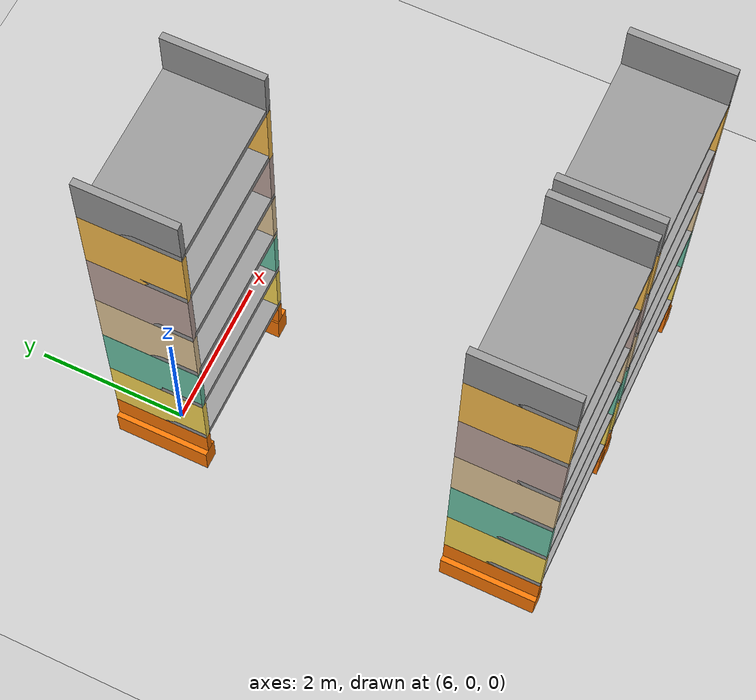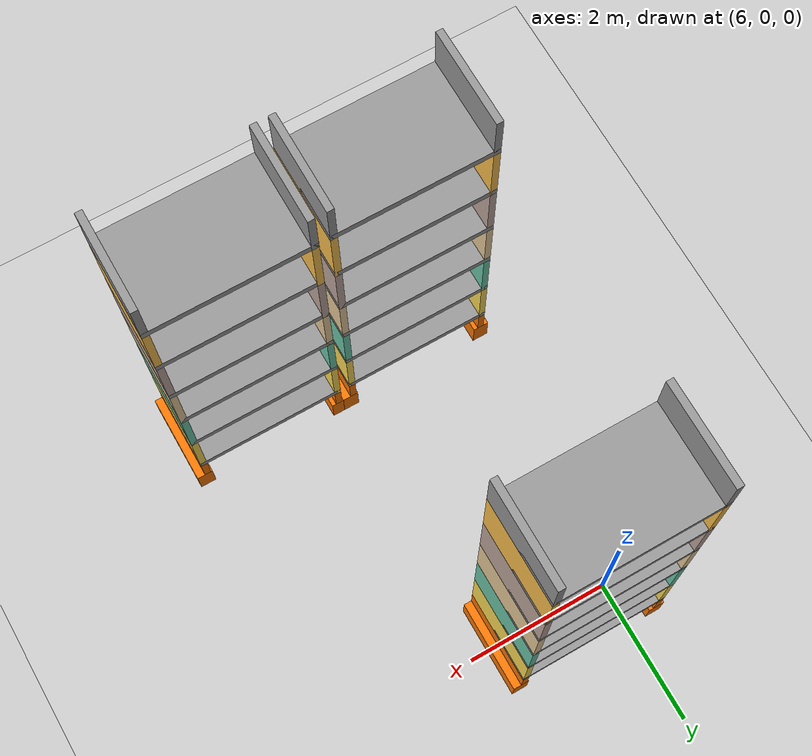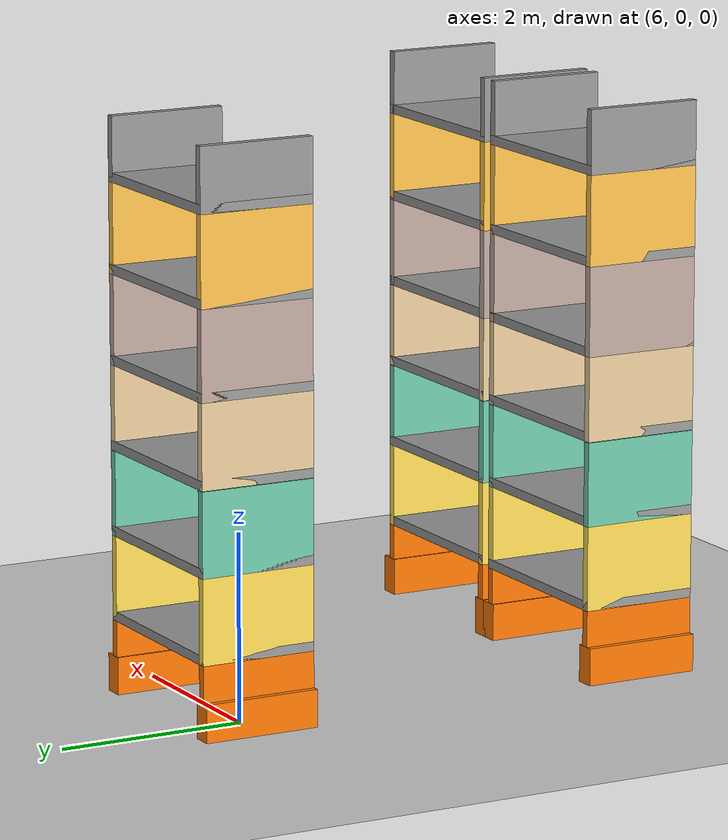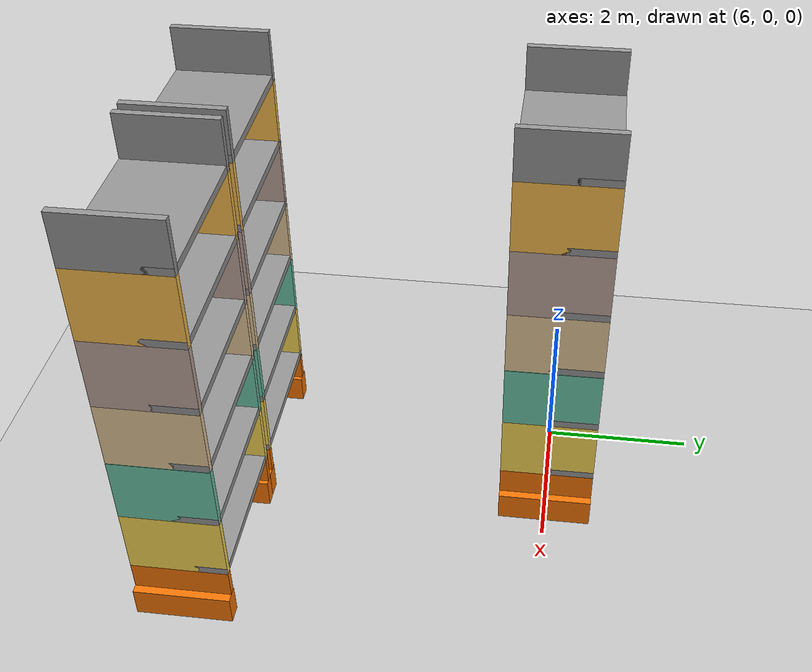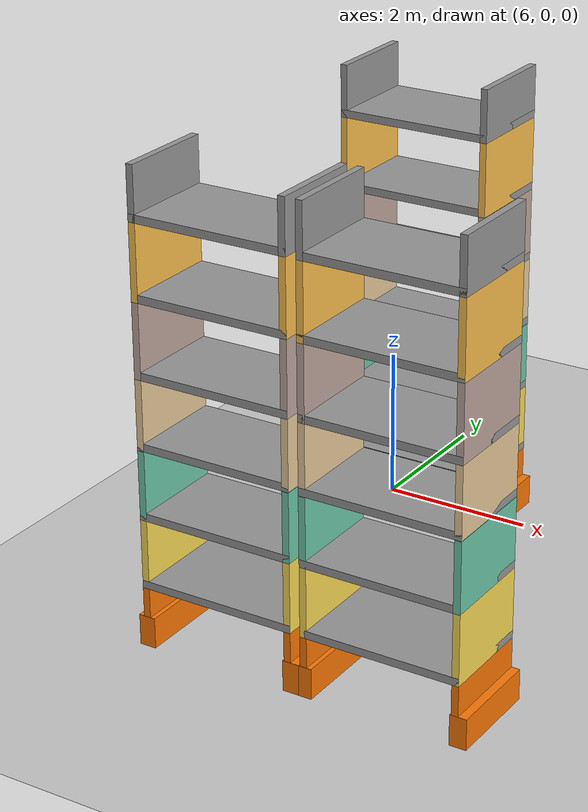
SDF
<sdf version="1.6">
 <world name="pseudo_world1">
  <model name="ground_plane">
   <static>1</static>
   <link name="link">
    <collision name="collision">
     <geometry><plane><normal>0 0 1</normal><size>100 100</size></plane></geometry>
     <surface><friction><ode><mu>100</mu><mu2>50</mu2></ode></friction></surface>
    </collision>
    <visual name="visual">
     <cast_shadows>0</cast_shadows>
     <geometry><plane><normal>0 0 1</normal><size>100 100</size></plane></geometry>
     <material>
      <script><uri>file://media/materials/scripts/gazebo.material</uri><name>Gazebo/Grey</name></script>
     </material>
    </visual>
   </link>
  </model>
  <model name="rack_whole_2">
   <static>1</static>
   <pose>6.63 0 0 0 -0 0</pose>
   <link name="Base_L">
    <collision name="Base_L_Collision">
     <geometry><box><size>1.258 0.22 0.4</size></box></geometry>
     <pose>0 0 0.2 0 -0 0</pose>
    </collision>
    <visual name="Base_L_Visual">
     <pose>0 0 0.2 0 -0 0</pose>
     <geometry><box><size>1.258 0.22 0.4</size></box></geometry>
     <material>
      <script><uri>file://media/materials/scripts/gazebo.material</uri><name>Gazebo/Grey</name></script>
      <ambient>0.996078 0.47451 0.0196078 1</ambient>
     </material>
     <meta><layer>0</layer></meta>
    </visual>
    <pose>-1.02 0 0 0 -0 1.5708</pose>
   </link>
   <link name="Base_R">
    <collision name="Base_R_Collision">
     <geometry><box><size>1.258 0.22 0.4</size></box></geometry>
     <pose>0 0 0.2 0 -0 0</pose>
    </collision>
    <visual name="Base_R_Visual">
     <pose>0 0 0.2 0 -0 0</pose>
     <geometry><box><size>1.258 0.22 0.4</size></box></geometry>
     <material>
      <script><uri>file://media/materials/scripts/gazebo.material</uri><name>Gazebo/Grey</name></script>
      <ambient>0.996078 0.47451 0.0196078 1</ambient>
     </material>
     <meta><layer>0</layer></meta>
    </visual>
    <pose>1.02 0 0 0 -0 1.5708</pose>
   </link>
   <link name="Wall_1_L">
    <collision name="Wall_1_L_Collision">
     <geometry><box><size>1.258 0.09 0.387</size></box></geometry>
     <pose>0 0 0.1935 0 -0 0</pose>
    </collision>
    <visual name="Wall_1_L_Visual">
     <pose>0 0 0.1935 0 -0 0</pose>
     <geometry><box><size>1.258 0.09 0.387</size></box></geometry>
     <material>
      <script><uri>file://media/materials/scripts/gazebo.material</uri><name>Gazebo/Grey</name></script>
      <ambient>0.996078 0.47451 0.0196078 1</ambient>
     </material>
     <meta><layer>1</layer></meta>
    </visual>
    <pose>-1.015 0 0.4 0 -0 1.5708</pose>
   </link>
   <link name="Wall_1_R">
    <collision name="Wall_1_R_Collision">
     <geometry><box><size>1.258 0.09 0.387</size></box></geometry>
     <pose>0 0 0.1935 0 -0 0</pose>
    </collision>
    <visual name="Wall_1_R_Visual">
     <pose>0 0 0.1935 0 -0 0</pose>
     <geometry><box><size>1.258 0.09 0.387</size></box></geometry>
     <material>
      <script><uri>file://media/materials/scripts/gazebo.material</uri><name>Gazebo/Grey</name></script>
      <ambient>0.996078 0.47451 0.0196078 1</ambient>
     </material>
     <meta><layer>1</layer></meta>
    </visual>
    <pose>0.975 0 0.4 0 -0 1.5708</pose>
   </link>
   <link name="Floor_1">
    <collision name="Floor_1_Collision">
     <geometry><box><size>2.08 1.258 0.1</size></box></geometry>
     <pose>0 0 0.05 0 -0 0</pose>
    </collision>
    <visual name="Floor_1_Visual">
     <pose>0 0 0.05 0 -0 0</pose>
     <geometry><box><size>2.08 1.258 0.1</size></box></geometry>
     <material>
      <script><uri>file://media/materials/scripts/gazebo.material</uri><name>Gazebo/Grey</name></script>
      <ambient>1 1 1 1</ambient>
     </material>
     <meta><layer>2</layer></meta>
    </visual>
    <pose>-0.02 0 0.787 0 -0 0</pose>
   </link>
   <link name="Wall_2_L">
    <collision name="Wall_2_L_Collision">
     <geometry><box><size>1.258 0.09 0.905</size></box></geometry>
     <pose>0 0 0.4525 0 -0 0</pose>
    </collision>
    <visual name="Wall_2_L_Visual">
     <pose>0 0 0.4525 0 -0 0</pose>
     <geometry><box><size>1.258 0.09 0.905</size></box></geometry>
     <material>
      <script><uri>file://media/materials/scripts/gazebo.material</uri><name>Gazebo/Grey</name></script>
      <ambient>1 0.87 0.34 1</ambient>
     </material>
     <meta><layer>2</layer></meta>
    </visual>
    <pose>-1.015 0 0.787 0 -0 1.5708</pose>
   </link>
   <link name="Wall_2_R">
    <collision name="Wall_2_R_Collision">
     <geometry><box><size>1.258 0.09 0.905</size></box></geometry>
     <pose>0 0 0.4525 0 -0 0</pose>
    </collision>
    <visual name="Wall_2_R_Visual">
     <pose>0 0 0.4525 0 -0 0</pose>
     <geometry><box><size>1.258 0.09 0.905</size></box></geometry>
     <material>
      <script><uri>file://media/materials/scripts/gazebo.material</uri><name>Gazebo/Grey</name></script>
      <ambient>1 0.87 0.34 1</ambient>
     </material>
     <meta><layer>2</layer></meta>
    </visual>
    <pose>0.975 0 0.787 0 -0 1.5708</pose>
   </link>
   <link name="Floor_2">
    <collision name="Floor_2_Collision">
     <geometry><box><size>2.08 1.258 0.1</size></box></geometry>
     <pose>0 0 0.05 0 -0 0</pose>
    </collision>
    <visual name="Floor_2_Visual">
     <pose>0 0 0.05 0 -0 0</pose>
     <geometry><box><size>2.08 1.258 0.1</size></box></geometry>
     <material>
      <script><uri>file://media/materials/scripts/gazebo.material</uri><name>Gazebo/Grey</name></script>
      <ambient>1 1 1 1</ambient>
     </material>
     <meta><layer>3</layer></meta>
    </visual>
    <pose>-0.02 0 1.692 0 -0 0</pose>
   </link>
   <link name="Wall_3_L">
    <collision name="Wall_3_L_Collision">
     <geometry><box><size>1.258 0.09 0.899</size></box></geometry>
     <pose>0 0 0.4495 0 -0 0</pose>
    </collision>
    <visual name="Wall_3_L_Visual">
     <pose>0 0 0.4495 0 -0 0</pose>
     <geometry><box><size>1.258 0.09 0.899</size></box></geometry>
     <material>
      <script><uri>file://media/materials/scripts/gazebo.material</uri><name>Gazebo/Grey</name></script>
      <ambient>0.435294 0.796078 0.67451 1</ambient>
     </material>
     <meta><layer>3</layer></meta>
    </visual>
    <pose>-1.015 0 1.692 0 -0 1.5708</pose>
   </link>
   <link name="Wall_3_R">
    <collision name="Wall_3_R_Collision">
     <geometry><box><size>1.258 0.09 0.899</size></box></geometry>
     <pose>0 0 0.4495 0 -0 0</pose>
    </collision>
    <visual name="Wall_3_R_Visual">
     <pose>0 0 0.4495 0 -0 0</pose>
     <geometry><box><size>1.258 0.09 0.899</size></box></geometry>
     <material>
      <script><uri>file://media/materials/scripts/gazebo.material</uri><name>Gazebo/Grey</name></script>
      <ambient>0.435294 0.796078 0.67451 1</ambient>
     </material>
     <meta><layer>3</layer></meta>
    </visual>
    <pose>0.975 0 1.692 0 -0 1.5708</pose>
   </link>
   <link name="Floor_3">
    <collision name="Floor_3_Collision">
     <geometry><box><size>2.08 1.258 0.1</size></box></geometry>
     <pose>0 0 0.05 0 -0 0</pose>
    </collision>
    <visual name="Floor_3_Visual">
     <pose>0 0 0.05 0 -0 0</pose>
     <geometry><box><size>2.08 1.258 0.1</size></box></geometry>
     <material>
      <script><uri>file://media/materials/scripts/gazebo.material</uri><name>Gazebo/Grey</name></script>
      <ambient>1 1 1 1</ambient>
     </material>
     <meta><layer>4</layer></meta>
    </visual>
    <pose>-0.02 0 2.597 0 -0 0</pose>
   </link>
   <link name="Wall_4_L">
    <collision name="Wall_4_L_Collision">
     <geometry><box><size>1.258 0.09 0.9</size></box></geometry>
     <pose>0 0 0.45 0 -0 0</pose>
    </collision>
    <visual name="Wall_4_L_Visual">
     <pose>0 0 0.45 0 -0 0</pose>
     <geometry><box><size>1.258 0.09 0.9</size></box></geometry>
     <material>
      <script><uri>file://media/materials/scripts/gazebo.material</uri><name>Gazebo/Grey</name></script>
      <ambient>0.921569 0.807843 0.615686 1</ambient>
     </material>
     <meta><layer>4</layer></meta>
    </visual>
    <pose>-1.015 0 2.597 0 -0 1.5708</pose>
   </link>
   <link name="Wall_4_R">
    <collision name="Wall_4_R_Collision">
     <geometry><box><size>1.258 0.09 0.9</size></box></geometry>
     <pose>0 0 0.45 0 -0 0</pose>
    </collision>
    <visual name="Wall_4_R_Visual">
     <pose>0 0 0.45 0 -0 0</pose>
     <geometry><box><size>1.258 0.09 0.9</size></box></geometry>
     <material>
      <script><uri>file://media/materials/scripts/gazebo.material</uri><name>Gazebo/Grey</name></script>
      <ambient>0.921569 0.807843 0.615686 1</ambient>
     </material>
     <meta><layer>4</layer></meta>
    </visual>
    <pose>0.975 0 2.597 0 -0 1.5708</pose>
   </link>
   <link name="Floor_4">
    <collision name="Floor_4_Collision">
     <geometry><box><size>2.08 1.258 0.1</size></box></geometry>
     <pose>0 0 0.05 0 -0 0</pose>
    </collision>
    <visual name="Floor_4_Visual">
     <pose>0 0 0.05 0 -0 0</pose>
     <geometry><box><size>2.08 1.258 0.1</size></box></geometry>
     <material>
      <script><uri>file://media/materials/scripts/gazebo.material</uri><name>Gazebo/Grey</name></script>
      <ambient>1 1 1 1</ambient>
     </material>
     <meta><layer>5</layer></meta>
    </visual>
    <pose>-0.02 0 3.497 0 -0 0</pose>
   </link>
   <link name="Wall_5_L">
    <collision name="Wall_5_L_Collision">
     <geometry><box><size>1.258 0.09 0.952</size></box></geometry>
     <pose>0 0 0.476 0 -0 0</pose>
    </collision>
    <visual name="Wall_5_L_Visual">
     <pose>0 0 0.476 0 -0 0</pose>
     <geometry><box><size>1.258 0.09 0.952</size></box></geometry>
     <material>
      <script><uri>file://media/materials/scripts/gazebo.material</uri><name>Gazebo/Grey</name></script>
      <ambient>0.760784 0.662745 0.627451 1</ambient>
     </material>
     <meta><layer>5</layer></meta>
    </visual>
    <pose>-1.015 0 3.497 0 -0 1.5708</pose>
   </link>
   <link name="Wall_5_R">
    <collision name="Wall_5_R_Collision">
     <geometry><box><size>1.258 0.09 0.952</size></box></geometry>
     <pose>0 0 0.476 0 -0 0</pose>
    </collision>
    <visual name="Wall_5_R_Visual">
     <pose>0 0 0.476 0 -0 0</pose>
     <geometry><box><size>1.258 0.09 0.952</size></box></geometry>
     <material>
      <script><uri>file://media/materials/scripts/gazebo.material</uri><name>Gazebo/Grey</name></script>
      <ambient>0.760784 0.662745 0.627451 1</ambient>
     </material>
     <meta><layer>5</layer></meta>
    </visual>
    <pose>0.975 0 3.497 0 -0 1.5708</pose>
   </link>
   <link name="Floor_5">
    <collision name="Floor_5_Collision">
     <geometry><box><size>2.08 1.258 0.1</size></box></geometry>
     <pose>0 0 0.05 0 -0 0</pose>
    </collision>
    <visual name="Floor_5_Visual">
     <pose>0 0 0.05 0 -0 0</pose>
     <geometry><box><size>2.08 1.258 0.1</size></box></geometry>
     <material>
      <script><uri>file://media/materials/scripts/gazebo.material</uri><name>Gazebo/Grey</name></script>
      <ambient>1 1 1 1</ambient>
     </material>
     <meta><layer>6</layer></meta>
    </visual>
    <pose>-0.02 0 4.449 0 -0 0</pose>
   </link>
   <link name="Wall_6_L">
    <collision name="Wall_6_L_Collision">
     <geometry><box><size>1.258 0.09 0.957</size></box></geometry>
     <pose>0 0 0.4785 0 -0 0</pose>
    </collision>
    <visual name="Wall_6_L_Visual">
     <pose>0 0 0.4785 0 -0 0</pose>
     <geometry><box><size>1.258 0.09 0.957</size></box></geometry>
     <material>
      <script><uri>file://media/materials/scripts/gazebo.material</uri><name>Gazebo/Grey</name></script>
      <ambient>1 0.764706 0.305882 1</ambient>
     </material>
     <meta><layer>6</layer></meta>
    </visual>
    <pose>-1.015 0 4.449 0 -0 1.5708</pose>
   </link>
   <link name="Wall_6_R">
    <collision name="Wall_6_R_Collision">
     <geometry><box><size>1.258 0.09 0.957</size></box></geometry>
     <pose>0 0 0.4785 0 -0 0</pose>
    </collision>
    <visual name="Wall_6_R_Visual">
     <pose>0 0 0.4785 0 -0 0</pose>
     <geometry><box><size>1.258 0.09 0.957</size></box></geometry>
     <material>
      <script><uri>file://media/materials/scripts/gazebo.material</uri><name>Gazebo/Grey</name></script>
      <ambient>1 0.764706 0.305882 1</ambient>
     </material>
     <meta><layer>6</layer></meta>
    </visual>
    <pose>0.975 0 4.449 0 -0 1.5708</pose>
   </link>
   <link name="Floor_6">
    <collision name="Floor_6_Collision">
     <geometry><box><size>2.08 1.258 0.1</size></box></geometry>
     <pose>0 0 0.05 0 -0 0</pose>
    </collision>
    <visual name="Floor_6_Visual">
     <pose>0 0 0.05 0 -0 0</pose>
     <geometry><box><size>2.08 1.258 0.1</size></box></geometry>
     <material>
      <script><uri>file://media/materials/scripts/gazebo.material</uri><name>Gazebo/Grey</name></script>
      <ambient>1 1 1 1</ambient>
     </material>
     <meta><layer>7</layer></meta>
    </visual>
    <pose>-0.02 0 5.406 0 -0 0</pose>
   </link>
   <link name="Wall_7_L">
    <collision name="Wall_7_L_Collision">
     <geometry><box><size>1.258 0.09 0.685</size></box></geometry>
     <pose>0 0 0.3425 0 -0 0</pose>
    </collision>
    <visual name="Wall_7_L_Visual">
     <pose>0 0 0.3425 0 -0 0</pose>
     <geometry><box><size>1.258 0.09 0.685</size></box></geometry>
     <material>
      <script><uri>file://media/materials/scripts/gazebo.material</uri><name>Gazebo/Grey</name></script>
      <ambient>1 1 1 1</ambient>
     </material>
     <meta><layer>7</layer></meta>
    </visual>
    <pose>-1.015 0 5.406 0 -0 1.5708</pose>
   </link>
   <link name="Wall_7_R">
    <collision name="Wall_7_R_Collision">
     <geometry><box><size>1.258 0.09 0.685</size></box></geometry>
     <pose>0 0 0.3425 0 -0 0</pose>
    </collision>
    <visual name="Wall_7_R_Visual">
     <pose>0 0 0.3425 0 -0 0</pose>
     <geometry><box><size>1.258 0.09 0.685</size></box></geometry>
     <material>
      <script><uri>file://media/materials/scripts/gazebo.material</uri><name>Gazebo/Grey</name></script>
      <ambient>1 1 1 1</ambient>
     </material>
     <meta><layer>7</layer></meta>
    </visual>
    <pose>0.975 0 5.406 0 -0 1.5708</pose>
   </link>
  </model>
  <model name="rack_whole_6">
   <static>1</static>
   <pose>6.63 -4.478 0 0 -0 0</pose>
   <link name="Base_L">
    <collision name="Base_L_Collision">
     <geometry><box><size>1.258 0.22 0.4</size></box></geometry>
     <pose>0 0 0.2 0 -0 0</pose>
    </collision>
    <visual name="Base_L_Visual">
     <pose>0 0 0.2 0 -0 0</pose>
     <geometry><box><size>1.258 0.22 0.4</size></box></geometry>
     <material>
      <script><uri>file://media/materials/scripts/gazebo.material</uri><name>Gazebo/Grey</name></script>
      <ambient>0.996078 0.47451 0.0196078 1</ambient>
     </material>
     <meta><layer>0</layer></meta>
    </visual>
    <pose>-1.02 0 0 0 -0 1.5708</pose>
   </link>
   <link name="Base_R">
    <collision name="Base_R_Collision">
     <geometry><box><size>1.258 0.22 0.4</size></box></geometry>
     <pose>0 0 0.2 0 -0 0</pose>
    </collision>
    <visual name="Base_R_Visual">
     <pose>0 0 0.2 0 -0 0</pose>
     <geometry><box><size>1.258 0.22 0.4</size></box></geometry>
     <material>
      <script><uri>file://media/materials/scripts/gazebo.material</uri><name>Gazebo/Grey</name></script>
      <ambient>0.996078 0.47451 0.0196078 1</ambient>
     </material>
     <meta><layer>0</layer></meta>
    </visual>
    <pose>1.02 0 0 0 -0 1.5708</pose>
   </link>
   <link name="Wall_1_L">
    <collision name="Wall_1_L_Collision">
     <geometry><box><size>1.258 0.09 0.387</size></box></geometry>
     <pose>0 0 0.1935 0 -0 0</pose>
    </collision>
    <visual name="Wall_1_L_Visual">
     <pose>0 0 0.1935 0 -0 0</pose>
     <geometry><box><size>1.258 0.09 0.387</size></box></geometry>
     <material>
      <script><uri>file://media/materials/scripts/gazebo.material</uri><name>Gazebo/Grey</name></script>
      <ambient>0.996078 0.47451 0.0196078 1</ambient>
     </material>
     <meta><layer>1</layer></meta>
    </visual>
    <pose>-1.015 0 0.4 0 -0 1.5708</pose>
   </link>
   <link name="Wall_1_R">
    <collision name="Wall_1_R_Collision">
     <geometry><box><size>1.258 0.09 0.387</size></box></geometry>
     <pose>0 0 0.1935 0 -0 0</pose>
    </collision>
    <visual name="Wall_1_R_Visual">
     <pose>0 0 0.1935 0 -0 0</pose>
     <geometry><box><size>1.258 0.09 0.387</size></box></geometry>
     <material>
      <script><uri>file://media/materials/scripts/gazebo.material</uri><name>Gazebo/Grey</name></script>
      <ambient>0.996078 0.47451 0.0196078 1</ambient>
     </material>
     <meta><layer>1</layer></meta>
    </visual>
    <pose>0.975 0 0.4 0 -0 1.5708</pose>
   </link>
   <link name="Floor_1">
    <collision name="Floor_1_Collision">
     <geometry><box><size>2.08 1.258 0.1</size></box></geometry>
     <pose>0 0 0.05 0 -0 0</pose>
    </collision>
    <visual name="Floor_1_Visual">
     <pose>0 0 0.05 0 -0 0</pose>
     <geometry><box><size>2.08 1.258 0.1</size></box></geometry>
     <material>
      <script><uri>file://media/materials/scripts/gazebo.material</uri><name>Gazebo/Grey</name></script>
      <ambient>1 1 1 1</ambient>
     </material>
     <meta><layer>2</layer></meta>
    </visual>
    <pose>-0.02 0 0.787 0 -0 0</pose>
   </link>
   <link name="Wall_2_L">
    <collision name="Wall_2_L_Collision">
     <geometry><box><size>1.258 0.09 0.905</size></box></geometry>
     <pose>0 0 0.4525 0 -0 0</pose>
    </collision>
    <visual name="Wall_2_L_Visual">
     <pose>0 0 0.4525 0 -0 0</pose>
     <geometry><box><size>1.258 0.09 0.905</size></box></geometry>
     <material>
      <script><uri>file://media/materials/scripts/gazebo.material</uri><name>Gazebo/Grey</name></script>
      <ambient>1 0.87 0.34 1</ambient>
     </material>
     <meta><layer>2</layer></meta>
    </visual>
    <pose>-1.015 0 0.787 0 -0 1.5708</pose>
   </link>
   <link name="Wall_2_R">
    <collision name="Wall_2_R_Collision">
     <geometry><box><size>1.258 0.09 0.905</size></box></geometry>
     <pose>0 0 0.4525 0 -0 0</pose>
    </collision>
    <visual name="Wall_2_R_Visual">
     <pose>0 0 0.4525 0 -0 0</pose>
     <geometry><box><size>1.258 0.09 0.905</size></box></geometry>
     <material>
      <script><uri>file://media/materials/scripts/gazebo.material</uri><name>Gazebo/Grey</name></script>
      <ambient>1 0.87 0.34 1</ambient>
     </material>
     <meta><layer>2</layer></meta>
    </visual>
    <pose>0.975 0 0.787 0 -0 1.5708</pose>
   </link>
   <link name="Floor_2">
    <collision name="Floor_2_Collision">
     <geometry><box><size>2.08 1.258 0.1</size></box></geometry>
     <pose>0 0 0.05 0 -0 0</pose>
    </collision>
    <visual name="Floor_2_Visual">
     <pose>0 0 0.05 0 -0 0</pose>
     <geometry><box><size>2.08 1.258 0.1</size></box></geometry>
     <material>
      <script><uri>file://media/materials/scripts/gazebo.material</uri><name>Gazebo/Grey</name></script>
      <ambient>1 1 1 1</ambient>
     </material>
     <meta><layer>3</layer></meta>
    </visual>
    <pose>-0.02 0 1.692 0 -0 0</pose>
   </link>
   <link name="Wall_3_L">
    <collision name="Wall_3_L_Collision">
     <geometry><box><size>1.258 0.09 0.899</size></box></geometry>
     <pose>0 0 0.4495 0 -0 0</pose>
    </collision>
    <visual name="Wall_3_L_Visual">
     <pose>0 0 0.4495 0 -0 0</pose>
     <geometry><box><size>1.258 0.09 0.899</size></box></geometry>
     <material>
      <script><uri>file://media/materials/scripts/gazebo.material</uri><name>Gazebo/Grey</name></script>
      <ambient>0.435294 0.796078 0.67451 1</ambient>
     </material>
     <meta><layer>3</layer></meta>
    </visual>
    <pose>-1.015 0 1.692 0 -0 1.5708</pose>
   </link>
   <link name="Wall_3_R">
    <collision name="Wall_3_R_Collision">
     <geometry><box><size>1.258 0.09 0.899</size></box></geometry>
     <pose>0 0 0.4495 0 -0 0</pose>
    </collision>
    <visual name="Wall_3_R_Visual">
     <pose>0 0 0.4495 0 -0 0</pose>
     <geometry><box><size>1.258 0.09 0.899</size></box></geometry>
     <material>
      <script><uri>file://media/materials/scripts/gazebo.material</uri><name>Gazebo/Grey</name></script>
      <ambient>0.435294 0.796078 0.67451 1</ambient>
     </material>
     <meta><layer>3</layer></meta>
    </visual>
    <pose>0.975 0 1.692 0 -0 1.5708</pose>
   </link>
   <link name="Floor_3">
    <collision name="Floor_3_Collision">
     <geometry><box><size>2.08 1.258 0.1</size></box></geometry>
     <pose>0 0 0.05 0 -0 0</pose>
    </collision>
    <visual name="Floor_3_Visual">
     <pose>0 0 0.05 0 -0 0</pose>
     <geometry><box><size>2.08 1.258 0.1</size></box></geometry>
     <material>
      <script><uri>file://media/materials/scripts/gazebo.material</uri><name>Gazebo/Grey</name></script>
      <ambient>1 1 1 1</ambient>
     </material>
     <meta><layer>4</layer></meta>
    </visual>
    <pose>-0.02 0 2.597 0 -0 0</pose>
   </link>
   <link name="Wall_4_L">
    <collision name="Wall_4_L_Collision">
     <geometry><box><size>1.258 0.09 0.9</size></box></geometry>
     <pose>0 0 0.45 0 -0 0</pose>
    </collision>
    <visual name="Wall_4_L_Visual">
     <pose>0 0 0.45 0 -0 0</pose>
     <geometry><box><size>1.258 0.09 0.9</size></box></geometry>
     <material>
      <script><uri>file://media/materials/scripts/gazebo.material</uri><name>Gazebo/Grey</name></script>
      <ambient>0.921569 0.807843 0.615686 1</ambient>
     </material>
     <meta><layer>4</layer></meta>
    </visual>
    <pose>-1.015 0 2.597 0 -0 1.5708</pose>
   </link>
   <link name="Wall_4_R">
    <collision name="Wall_4_R_Collision">
     <geometry><box><size>1.258 0.09 0.9</size></box></geometry>
     <pose>0 0 0.45 0 -0 0</pose>
    </collision>
    <visual name="Wall_4_R_Visual">
     <pose>0 0 0.45 0 -0 0</pose>
     <geometry><box><size>1.258 0.09 0.9</size></box></geometry>
     <material>
      <script><uri>file://media/materials/scripts/gazebo.material</uri><name>Gazebo/Grey</name></script>
      <ambient>0.921569 0.807843 0.615686 1</ambient>
     </material>
     <meta><layer>4</layer></meta>
    </visual>
    <pose>0.975 0 2.597 0 -0 1.5708</pose>
   </link>
   <link name="Floor_4">
    <collision name="Floor_4_Collision">
     <geometry><box><size>2.08 1.258 0.1</size></box></geometry>
     <pose>0 0 0.05 0 -0 0</pose>
    </collision>
    <visual name="Floor_4_Visual">
     <pose>0 0 0.05 0 -0 0</pose>
     <geometry><box><size>2.08 1.258 0.1</size></box></geometry>
     <material>
      <script><uri>file://media/materials/scripts/gazebo.material</uri><name>Gazebo/Grey</name></script>
      <ambient>1 1 1 1</ambient>
     </material>
     <meta><layer>5</layer></meta>
    </visual>
    <pose>-0.02 0 3.497 0 -0 0</pose>
   </link>
   <link name="Wall_5_L">
    <collision name="Wall_5_L_Collision">
     <geometry><box><size>1.258 0.09 0.952</size></box></geometry>
     <pose>0 0 0.476 0 -0 0</pose>
    </collision>
    <visual name="Wall_5_L_Visual">
     <pose>0 0 0.476 0 -0 0</pose>
     <geometry><box><size>1.258 0.09 0.952</size></box></geometry>
     <material>
      <script><uri>file://media/materials/scripts/gazebo.material</uri><name>Gazebo/Grey</name></script>
      <ambient>0.760784 0.662745 0.627451 1</ambient>
     </material>
     <meta><layer>5</layer></meta>
    </visual>
    <pose>-1.015 0 3.497 0 -0 1.5708</pose>
   </link>
   <link name="Wall_5_R">
    <collision name="Wall_5_R_Collision">
     <geometry><box><size>1.258 0.09 0.952</size></box></geometry>
     <pose>0 0 0.476 0 -0 0</pose>
    </collision>
    <visual name="Wall_5_R_Visual">
     <pose>0 0 0.476 0 -0 0</pose>
     <geometry><box><size>1.258 0.09 0.952</size></box></geometry>
     <material>
      <script><uri>file://media/materials/scripts/gazebo.material</uri><name>Gazebo/Grey</name></script>
      <ambient>0.760784 0.662745 0.627451 1</ambient>
     </material>
     <meta><layer>5</layer></meta>
    </visual>
    <pose>0.975 0 3.497 0 -0 1.5708</pose>
   </link>
   <link name="Floor_5">
    <collision name="Floor_5_Collision">
     <geometry><box><size>2.08 1.258 0.1</size></box></geometry>
     <pose>0 0 0.05 0 -0 0</pose>
    </collision>
    <visual name="Floor_5_Visual">
     <pose>0 0 0.05 0 -0 0</pose>
     <geometry><box><size>2.08 1.258 0.1</size></box></geometry>
     <material>
      <script><uri>file://media/materials/scripts/gazebo.material</uri><name>Gazebo/Grey</name></script>
      <ambient>1 1 1 1</ambient>
     </material>
     <meta><layer>6</layer></meta>
    </visual>
    <pose>-0.02 0 4.449 0 -0 0</pose>
   </link>
   <link name="Wall_6_L">
    <collision name="Wall_6_L_Collision">
     <geometry><box><size>1.258 0.09 0.957</size></box></geometry>
     <pose>0 0 0.4785 0 -0 0</pose>
    </collision>
    <visual name="Wall_6_L_Visual">
     <pose>0 0 0.4785 0 -0 0</pose>
     <geometry><box><size>1.258 0.09 0.957</size></box></geometry>
     <material>
      <script><uri>file://media/materials/scripts/gazebo.material</uri><name>Gazebo/Grey</name></script>
      <ambient>1 0.764706 0.305882 1</ambient>
     </material>
     <meta><layer>6</layer></meta>
    </visual>
    <pose>-1.015 0 4.449 0 -0 1.5708</pose>
   </link>
   <link name="Wall_6_R">
    <collision name="Wall_6_R_Collision">
     <geometry><box><size>1.258 0.09 0.957</size></box></geometry>
     <pose>0 0 0.4785 0 -0 0</pose>
    </collision>
    <visual name="Wall_6_R_Visual">
     <pose>0 0 0.4785 0 -0 0</pose>
     <geometry><box><size>1.258 0.09 0.957</size></box></geometry>
     <material>
      <script><uri>file://media/materials/scripts/gazebo.material</uri><name>Gazebo/Grey</name></script>
      <ambient>1 0.764706 0.305882 1</ambient>
     </material>
     <meta><layer>6</layer></meta>
    </visual>
    <pose>0.975 0 4.449 0 -0 1.5708</pose>
   </link>
   <link name="Floor_6">
    <collision name="Floor_6_Collision">
     <geometry><box><size>2.08 1.258 0.1</size></box></geometry>
     <pose>0 0 0.05 0 -0 0</pose>
    </collision>
    <visual name="Floor_6_Visual">
     <pose>0 0 0.05 0 -0 0</pose>
     <geometry><box><size>2.08 1.258 0.1</size></box></geometry>
     <material>
      <script><uri>file://media/materials/scripts/gazebo.material</uri><name>Gazebo/Grey</name></script>
      <ambient>1 1 1 1</ambient>
     </material>
     <meta><layer>7</layer></meta>
    </visual>
    <pose>-0.02 0 5.406 0 -0 0</pose>
   </link>
   <link name="Wall_7_L">
    <collision name="Wall_7_L_Collision">
     <geometry><box><size>1.258 0.09 0.685</size></box></geometry>
     <pose>0 0 0.3425 0 -0 0</pose>
    </collision>
    <visual name="Wall_7_L_Visual">
     <pose>0 0 0.3425 0 -0 0</pose>
     <geometry><box><size>1.258 0.09 0.685</size></box></geometry>
     <material>
      <script><uri>file://media/materials/scripts/gazebo.material</uri><name>Gazebo/Grey</name></script>
      <ambient>1 1 1 1</ambient>
     </material>
     <meta><layer>7</layer></meta>
    </visual>
    <pose>-1.015 0 5.406 0 -0 1.5708</pose>
   </link>
   <link name="Wall_7_R">
    <collision name="Wall_7_R_Collision">
     <geometry><box><size>1.258 0.09 0.685</size></box></geometry>
     <pose>0 0 0.3425 0 -0 0</pose>
    </collision>
    <visual name="Wall_7_R_Visual">
     <pose>0 0 0.3425 0 -0 0</pose>
     <geometry><box><size>1.258 0.09 0.685</size></box></geometry>
     <material>
      <script><uri>file://media/materials/scripts/gazebo.material</uri><name>Gazebo/Grey</name></script>
      <ambient>1 1 1 1</ambient>
     </material>
     <meta><layer>7</layer></meta>
    </visual>
    <pose>0.975 0 5.406 0 -0 1.5708</pose>
   </link>
  </model>
  <model name="rack_whole_7">
   <static>1</static>
   <pose>8.84 -4.478 0 0 -0 0</pose>
   <link name="Base_L">
    <collision name="Base_L_Collision">
     <geometry><box><size>1.258 0.22 0.4</size></box></geometry>
     <pose>0 0 0.2 0 -0 0</pose>
    </collision>
    <visual name="Base_L_Visual">
     <pose>0 0 0.2 0 -0 0</pose>
     <geometry><box><size>1.258 0.22 0.4</size></box></geometry>
     <material>
      <script><uri>file://media/materials/scripts/gazebo.material</uri><name>Gazebo/Grey</name></script>
      <ambient>0.996078 0.47451 0.0196078 1</ambient>
     </material>
     <meta><layer>0</layer></meta>
    </visual>
    <pose>-1.02 0 0 0 -0 1.5708</pose>
   </link>
   <link name="Base_R">
    <collision name="Base_R_Collision">
     <geometry><box><size>1.258 0.22 0.4</size></box></geometry>
     <pose>0 0 0.2 0 -0 0</pose>
    </collision>
    <visual name="Base_R_Visual">
     <pose>0 0 0.2 0 -0 0</pose>
     <geometry><box><size>1.258 0.22 0.4</size></box></geometry>
     <material>
      <script><uri>file://media/materials/scripts/gazebo.material</uri><name>Gazebo/Grey</name></script>
      <ambient>0.996078 0.47451 0.0196078 1</ambient>
     </material>
     <meta><layer>0</layer></meta>
    </visual>
    <pose>1.02 0 0 0 -0 1.5708</pose>
   </link>
   <link name="Wall_1_L">
    <collision name="Wall_1_L_Collision">
     <geometry><box><size>1.258 0.09 0.387</size></box></geometry>
     <pose>0 0 0.1935 0 -0 0</pose>
    </collision>
    <visual name="Wall_1_L_Visual">
     <pose>0 0 0.1935 0 -0 0</pose>
     <geometry><box><size>1.258 0.09 0.387</size></box></geometry>
     <material>
      <script><uri>file://media/materials/scripts/gazebo.material</uri><name>Gazebo/Grey</name></script>
      <ambient>0.996078 0.47451 0.0196078 1</ambient>
     </material>
     <meta><layer>1</layer></meta>
    </visual>
    <pose>-1.015 0 0.4 0 -0 1.5708</pose>
   </link>
   <link name="Wall_1_R">
    <collision name="Wall_1_R_Collision">
     <geometry><box><size>1.258 0.09 0.387</size></box></geometry>
     <pose>0 0 0.1935 0 -0 0</pose>
    </collision>
    <visual name="Wall_1_R_Visual">
     <pose>0 0 0.1935 0 -0 0</pose>
     <geometry><box><size>1.258 0.09 0.387</size></box></geometry>
     <material>
      <script><uri>file://media/materials/scripts/gazebo.material</uri><name>Gazebo/Grey</name></script>
      <ambient>0.996078 0.47451 0.0196078 1</ambient>
     </material>
     <meta><layer>1</layer></meta>
    </visual>
    <pose>0.975 0 0.4 0 -0 1.5708</pose>
   </link>
   <link name="Floor_1">
    <collision name="Floor_1_Collision">
     <geometry><box><size>2.08 1.258 0.1</size></box></geometry>
     <pose>0 0 0.05 0 -0 0</pose>
    </collision>
    <visual name="Floor_1_Visual">
     <pose>0 0 0.05 0 -0 0</pose>
     <geometry><box><size>2.08 1.258 0.1</size></box></geometry>
     <material>
      <script><uri>file://media/materials/scripts/gazebo.material</uri><name>Gazebo/Grey</name></script>
      <ambient>1 1 1 1</ambient>
     </material>
     <meta><layer>2</layer></meta>
    </visual>
    <pose>-0.02 0 0.787 0 -0 0</pose>
   </link>
   <link name="Wall_2_L">
    <collision name="Wall_2_L_Collision">
     <geometry><box><size>1.258 0.09 0.905</size></box></geometry>
     <pose>0 0 0.4525 0 -0 0</pose>
    </collision>
    <visual name="Wall_2_L_Visual">
     <pose>0 0 0.4525 0 -0 0</pose>
     <geometry><box><size>1.258 0.09 0.905</size></box></geometry>
     <material>
      <script><uri>file://media/materials/scripts/gazebo.material</uri><name>Gazebo/Grey</name></script>
      <ambient>1 0.87 0.34 1</ambient>
     </material>
     <meta><layer>2</layer></meta>
    </visual>
    <pose>-1.015 0 0.787 0 -0 1.5708</pose>
   </link>
   <link name="Wall_2_R">
    <collision name="Wall_2_R_Collision">
     <geometry><box><size>1.258 0.09 0.905</size></box></geometry>
     <pose>0 0 0.4525 0 -0 0</pose>
    </collision>
    <visual name="Wall_2_R_Visual">
     <pose>0 0 0.4525 0 -0 0</pose>
     <geometry><box><size>1.258 0.09 0.905</size></box></geometry>
     <material>
      <script><uri>file://media/materials/scripts/gazebo.material</uri><name>Gazebo/Grey</name></script>
      <ambient>1 0.87 0.34 1</ambient>
     </material>
     <meta><layer>2</layer></meta>
    </visual>
    <pose>0.975 0 0.787 0 -0 1.5708</pose>
   </link>
   <link name="Floor_2">
    <collision name="Floor_2_Collision">
     <geometry><box><size>2.08 1.258 0.1</size></box></geometry>
     <pose>0 0 0.05 0 -0 0</pose>
    </collision>
    <visual name="Floor_2_Visual">
     <pose>0 0 0.05 0 -0 0</pose>
     <geometry><box><size>2.08 1.258 0.1</size></box></geometry>
     <material>
      <script><uri>file://media/materials/scripts/gazebo.material</uri><name>Gazebo/Grey</name></script>
      <ambient>1 1 1 1</ambient>
     </material>
     <meta><layer>3</layer></meta>
    </visual>
    <pose>-0.02 0 1.692 0 -0 0</pose>
   </link>
   <link name="Wall_3_L">
    <collision name="Wall_3_L_Collision">
     <geometry><box><size>1.258 0.09 0.899</size></box></geometry>
     <pose>0 0 0.4495 0 -0 0</pose>
    </collision>
    <visual name="Wall_3_L_Visual">
     <pose>0 0 0.4495 0 -0 0</pose>
     <geometry><box><size>1.258 0.09 0.899</size></box></geometry>
     <material>
      <script><uri>file://media/materials/scripts/gazebo.material</uri><name>Gazebo/Grey</name></script>
      <ambient>0.435294 0.796078 0.67451 1</ambient>
     </material>
     <meta><layer>3</layer></meta>
    </visual>
    <pose>-1.015 0 1.692 0 -0 1.5708</pose>
   </link>
   <link name="Wall_3_R">
    <collision name="Wall_3_R_Collision">
     <geometry><box><size>1.258 0.09 0.899</size></box></geometry>
     <pose>0 0 0.4495 0 -0 0</pose>
    </collision>
    <visual name="Wall_3_R_Visual">
     <pose>0 0 0.4495 0 -0 0</pose>
     <geometry><box><size>1.258 0.09 0.899</size></box></geometry>
     <material>
      <script><uri>file://media/materials/scripts/gazebo.material</uri><name>Gazebo/Grey</name></script>
      <ambient>0.435294 0.796078 0.67451 1</ambient>
     </material>
     <meta><layer>3</layer></meta>
    </visual>
    <pose>0.975 0 1.692 0 -0 1.5708</pose>
   </link>
   <link name="Floor_3">
    <collision name="Floor_3_Collision">
     <geometry><box><size>2.08 1.258 0.1</size></box></geometry>
     <pose>0 0 0.05 0 -0 0</pose>
    </collision>
    <visual name="Floor_3_Visual">
     <pose>0 0 0.05 0 -0 0</pose>
     <geometry><box><size>2.08 1.258 0.1</size></box></geometry>
     <material>
      <script><uri>file://media/materials/scripts/gazebo.material</uri><name>Gazebo/Grey</name></script>
      <ambient>1 1 1 1</ambient>
     </material>
     <meta><layer>4</layer></meta>
    </visual>
    <pose>-0.02 0 2.597 0 -0 0</pose>
   </link>
   <link name="Wall_4_L">
    <collision name="Wall_4_L_Collision">
     <geometry><box><size>1.258 0.09 0.9</size></box></geometry>
     <pose>0 0 0.45 0 -0 0</pose>
    </collision>
    <visual name="Wall_4_L_Visual">
     <pose>0 0 0.45 0 -0 0</pose>
     <geometry><box><size>1.258 0.09 0.9</size></box></geometry>
     <material>
      <script><uri>file://media/materials/scripts/gazebo.material</uri><name>Gazebo/Grey</name></script>
      <ambient>0.921569 0.807843 0.615686 1</ambient>
     </material>
     <meta><layer>4</layer></meta>
    </visual>
    <pose>-1.015 0 2.597 0 -0 1.5708</pose>
   </link>
   <link name="Wall_4_R">
    <collision name="Wall_4_R_Collision">
     <geometry><box><size>1.258 0.09 0.9</size></box></geometry>
     <pose>0 0 0.45 0 -0 0</pose>
    </collision>
    <visual name="Wall_4_R_Visual">
     <pose>0 0 0.45 0 -0 0</pose>
     <geometry><box><size>1.258 0.09 0.9</size></box></geometry>
     <material>
      <script><uri>file://media/materials/scripts/gazebo.material</uri><name>Gazebo/Grey</name></script>
      <ambient>0.921569 0.807843 0.615686 1</ambient>
     </material>
     <meta><layer>4</layer></meta>
    </visual>
    <pose>0.975 0 2.597 0 -0 1.5708</pose>
   </link>
   <link name="Floor_4">
    <collision name="Floor_4_Collision">
     <geometry><box><size>2.08 1.258 0.1</size></box></geometry>
     <pose>0 0 0.05 0 -0 0</pose>
    </collision>
    <visual name="Floor_4_Visual">
     <pose>0 0 0.05 0 -0 0</pose>
     <geometry><box><size>2.08 1.258 0.1</size></box></geometry>
     <material>
      <script><uri>file://media/materials/scripts/gazebo.material</uri><name>Gazebo/Grey</name></script>
      <ambient>1 1 1 1</ambient>
     </material>
     <meta><layer>5</layer></meta>
    </visual>
    <pose>-0.02 0 3.497 0 -0 0</pose>
   </link>
   <link name="Wall_5_L">
    <collision name="Wall_5_L_Collision">
     <geometry><box><size>1.258 0.09 0.952</size></box></geometry>
     <pose>0 0 0.476 0 -0 0</pose>
    </collision>
    <visual name="Wall_5_L_Visual">
     <pose>0 0 0.476 0 -0 0</pose>
     <geometry><box><size>1.258 0.09 0.952</size></box></geometry>
     <material>
      <script><uri>file://media/materials/scripts/gazebo.material</uri><name>Gazebo/Grey</name></script>
      <ambient>0.760784 0.662745 0.627451 1</ambient>
     </material>
     <meta><layer>5</layer></meta>
    </visual>
    <pose>-1.015 0 3.497 0 -0 1.5708</pose>
   </link>
   <link name="Wall_5_R">
    <collision name="Wall_5_R_Collision">
     <geometry><box><size>1.258 0.09 0.952</size></box></geometry>
     <pose>0 0 0.476 0 -0 0</pose>
    </collision>
    <visual name="Wall_5_R_Visual">
     <pose>0 0 0.476 0 -0 0</pose>
     <geometry><box><size>1.258 0.09 0.952</size></box></geometry>
     <material>
      <script><uri>file://media/materials/scripts/gazebo.material</uri><name>Gazebo/Grey</name></script>
      <ambient>0.760784 0.662745 0.627451 1</ambient>
     </material>
     <meta><layer>5</layer></meta>
    </visual>
    <pose>0.975 0 3.497 0 -0 1.5708</pose>
   </link>
   <link name="Floor_5">
    <collision name="Floor_5_Collision">
     <geometry><box><size>2.08 1.258 0.1</size></box></geometry>
     <pose>0 0 0.05 0 -0 0</pose>
    </collision>
    <visual name="Floor_5_Visual">
     <pose>0 0 0.05 0 -0 0</pose>
     <geometry><box><size>2.08 1.258 0.1</size></box></geometry>
     <material>
      <script><uri>file://media/materials/scripts/gazebo.material</uri><name>Gazebo/Grey</name></script>
      <ambient>1 1 1 1</ambient>
     </material>
     <meta><layer>6</layer></meta>
    </visual>
    <pose>-0.02 0 4.449 0 -0 0</pose>
   </link>
   <link name="Wall_6_L">
    <collision name="Wall_6_L_Collision">
     <geometry><box><size>1.258 0.09 0.957</size></box></geometry>
     <pose>0 0 0.4785 0 -0 0</pose>
    </collision>
    <visual name="Wall_6_L_Visual">
     <pose>0 0 0.4785 0 -0 0</pose>
     <geometry><box><size>1.258 0.09 0.957</size></box></geometry>
     <material>
      <script><uri>file://media/materials/scripts/gazebo.material</uri><name>Gazebo/Grey</name></script>
      <ambient>1 0.764706 0.305882 1</ambient>
     </material>
     <meta><layer>6</layer></meta>
    </visual>
    <pose>-1.015 0 4.449 0 -0 1.5708</pose>
   </link>
   <link name="Wall_6_R">
    <collision name="Wall_6_R_Collision">
     <geometry><box><size>1.258 0.09 0.957</size></box></geometry>
     <pose>0 0 0.4785 0 -0 0</pose>
    </collision>
    <visual name="Wall_6_R_Visual">
     <pose>0 0 0.4785 0 -0 0</pose>
     <geometry><box><size>1.258 0.09 0.957</size></box></geometry>
     <material>
      <script><uri>file://media/materials/scripts/gazebo.material</uri><name>Gazebo/Grey</name></script>
      <ambient>1 0.764706 0.305882 1</ambient>
     </material>
     <meta><layer>6</layer></meta>
    </visual>
    <pose>0.975 0 4.449 0 -0 1.5708</pose>
   </link>
   <link name="Floor_6">
    <collision name="Floor_6_Collision">
     <geometry><box><size>2.08 1.258 0.1</size></box></geometry>
     <pose>0 0 0.05 0 -0 0</pose>
    </collision>
    <visual name="Floor_6_Visual">
     <pose>0 0 0.05 0 -0 0</pose>
     <geometry><box><size>2.08 1.258 0.1</size></box></geometry>
     <material>
      <script><uri>file://media/materials/scripts/gazebo.material</uri><name>Gazebo/Grey</name></script>
      <ambient>1 1 1 1</ambient>
     </material>
     <meta><layer>7</layer></meta>
    </visual>
    <pose>-0.02 0 5.406 0 -0 0</pose>
   </link>
   <link name="Wall_7_L">
    <collision name="Wall_7_L_Collision">
     <geometry><box><size>1.258 0.09 0.685</size></box></geometry>
     <pose>0 0 0.3425 0 -0 0</pose>
    </collision>
    <visual name="Wall_7_L_Visual">
     <pose>0 0 0.3425 0 -0 0</pose>
     <geometry><box><size>1.258 0.09 0.685</size></box></geometry>
     <material>
      <script><uri>file://media/materials/scripts/gazebo.material</uri><name>Gazebo/Grey</name></script>
      <ambient>1 1 1 1</ambient>
     </material>
     <meta><layer>7</layer></meta>
    </visual>
    <pose>-1.015 0 5.406 0 -0 1.5708</pose>
   </link>
   <link name="Wall_7_R">
    <collision name="Wall_7_R_Collision">
     <geometry><box><size>1.258 0.09 0.685</size></box></geometry>
     <pose>0 0 0.3425 0 -0 0</pose>
    </collision>
    <visual name="Wall_7_R_Visual">
     <pose>0 0 0.3425 0 -0 0</pose>
     <geometry><box><size>1.258 0.09 0.685</size></box></geometry>
     <material>
      <script><uri>file://media/materials/scripts/gazebo.material</uri><name>Gazebo/Grey</name></script>
      <ambient>1 1 1 1</ambient>
     </material>
     <meta><layer>7</layer></meta>
    </visual>
    <pose>0.975 0 5.406 0 -0 1.5708</pose>
   </link>
  </model>
 </world>
</sdf>
